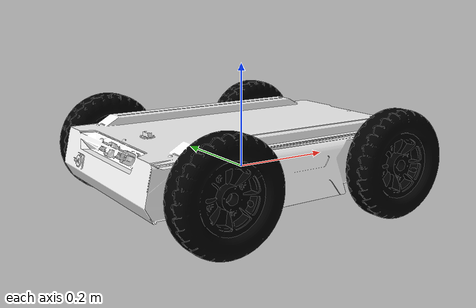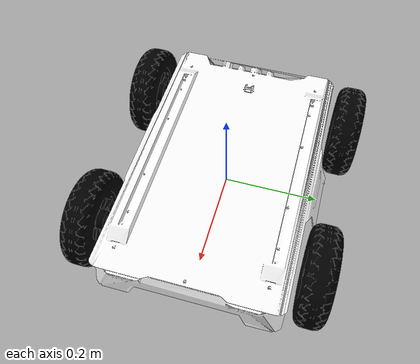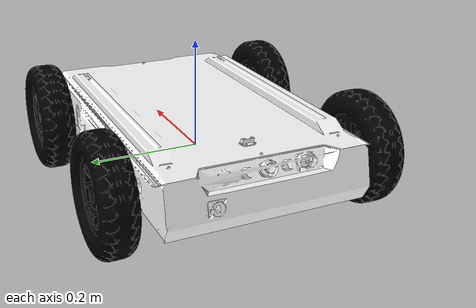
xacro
<?xml version="1.0" encoding="utf-8"?>

<robot name="dt_mini" xmlns:xacro="http://www.ros.org/wiki/xacro">

    <xacro:include filename="$(find dt-mini)/urdf/macros.xacro" />

    <link name="base_footprint">
    </link>

    <link name="base_link">
        <visual>
            <geometry>
                <mesh filename="package://dt-mini/meshes/DT-mini-chassis.STL" scale="1 1 1"/>
            </geometry>
            <origin xyz="-0.3 -0.215 -0.05" rpy="0 0 0" />
            <material name="white">
                <color rgba="1 1 1 1" />
            </material>
        </visual>
        <collision>
            <geometry>
                <box size="0.6 0.5 0.2" />
            </geometry>
            <origin xyz="0.0 0.0 0.0" rpy="0.0 0.0 0.0" />
        </collision>
        <inertial>
            <origin xyz="0 0 0" />
            <mass value="10" />
            <inertia
                ixx="0.066"
                ixy="0"
                ixz="0"
                iyy="0.0735"
                iyz="0"
                izz="0.0091" />
        </inertial>

    </link>

    <joint name="base_link2base_footprint" type="fixed">
        <parent link="base_footprint" />
        <child link="base_link"/>
        <origin xyz="0 0 0.032" />
    </joint>

    <link name="left_front_wheel">
        <visual>
            <geometry>
                <mesh filename="package://dt-mini/meshes/DGT-mini-luntai.STL" scale="1 1 1"/>
            </geometry>
            <origin xyz="-0.1 0.04 -0.105" rpy="0 0 -1.57" />
            <material name="black">
                <color rgba="0.0 0.0 0.0 1.0" />
            </material>
        </visual>
        <collision>
            <geometry>
                <cylinder radius="0.1" length="0.06" />
            </geometry>
            <origin xyz="0.0 0.0 0.0" rpy="1.57 0.0 0.0" />
        </collision>
        <inertial>
            <origin xyz="0 0 0" />
            <mass value="2.0" />
            <inertia ixx="6.64E-04" ixy="0" ixz="0" iyy="6.64E-04" iyz="0" izz="1.02E-03" />
        </inertial>
    </link>

    <joint name="left_front_wheel_joint" type="continuous">
        <parent link="base_link" />
        <child link="left_front_wheel" />
        <origin xyz="0.18 0.224 0" />
        <axis xyz="0 1 0" />
        <limit effort="100" velocity="1000" />
    </joint>

     <link name="right_front_wheel">
        <visual>
            <geometry>
                <mesh filename="package://dt-mini/meshes/DGT-mini-luntai.STL" scale="1 1 1"/>
            </geometry>
            <origin xyz="0.1 -0.04 -0.105" rpy="0 0 1.57" />
            <material name="black">
                <color rgba="0.0 0.0 0.0 1.0" />
            </material>
        </visual>
        <collision>
            <geometry>
                <cylinder radius="0.1" length="0.06" />
            </geometry>
            <origin xyz="0.0 0.0 0.0" rpy="1.57 0.0 0.0" />
        </collision>
        <inertial>
            <origin xyz="0 0 0" />
            <mass value="2.0" />
            <inertia ixx="6.64E-04" ixy="0" ixz="0" iyy="6.64E-04" iyz="0" izz="1.02E-03" />
        </inertial>
    </link>

    <joint name="right_front_wheel_joint" type="continuous">
        <parent link="base_link" />
        <child link="right_front_wheel" />
        <origin xyz="0.18 -0.224 0" />
        <axis xyz="0 1 0" />
        <limit effort="100" velocity="1000" />
    </joint>

    <link name="left_rear_wheel">
        <visual>
            <geometry>
                <mesh filename="package://dt-mini/meshes/DGT-mini-luntai.STL" scale="1 1 1"/>
            </geometry>
            <origin xyz="-0.1 0.04 -0.105" rpy="0 0 -1.57" />
            <material name="black">
                <color rgba="0.0 0.0 0.0 1.0" />
            </material>
        </visual>
        <collision>
            <geometry>
                <cylinder radius="0.1" length="0.06" />
            </geometry>
            <origin xyz="0.0 0.0 0.0" rpy="1.57 0.0 0.0" />
        </collision>
        <inertial>
            <origin xyz="0 0 0" />
            <mass value="2.0" />
            <inertia ixx="6.64E-04" ixy="0" ixz="0" iyy="6.64E-04" iyz="0" izz="1.02E-03" />
        </inertial>
    </link>

    <joint name="left_rear_wheel_joint" type="continuous">
        <parent link="base_link" />
        <child link="left_rear_wheel" />
        <origin xyz="-0.18 0.224 0" />
        <axis xyz="0 1 0" />
        <limit effort="100" velocity="1000" />
    </joint>

    <link name="right_rear_wheel">
        <visual>
            <geometry>
                <mesh filename="package://dt-mini/meshes/DGT-mini-luntai.STL" scale="1 1 1"/>
            </geometry>
            <origin xyz="0.1 -0.04 -0.105" rpy="0 0 1.57" />
            <material name="black">
                <color rgba="0.0 0.0 0.0 1.0" />
            </material>
        </visual>
        <collision>
            <geometry>
                <cylinder radius="0.1" length="0.06" />
            </geometry>
            <origin xyz="0.0 0.0 0.0" rpy="1.57 0.0 0.0" />
        </collision>
        <inertial>
            <origin xyz="0 0 0" />
            <mass value="2.0" />
            <inertia ixx="6.64E-04" ixy="0" ixz="0" iyy="6.64E-04" iyz="0" izz="1.02E-03" />
        </inertial>
    </link>

    <joint name="right_rear_wheel_joint" type="continuous">
        <parent link="base_link" />
        <child link="right_rear_wheel" />
        <origin xyz="-0.18 -0.224 0" />
        <axis xyz="0 1 0" />
        <limit effort="100" velocity="1000" />
    </joint>

  <xacro:include filename="$(find dt-mini)/urdf/dt-mini.gazebo" />

</robot>
